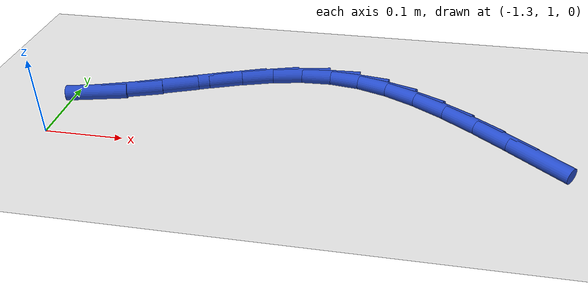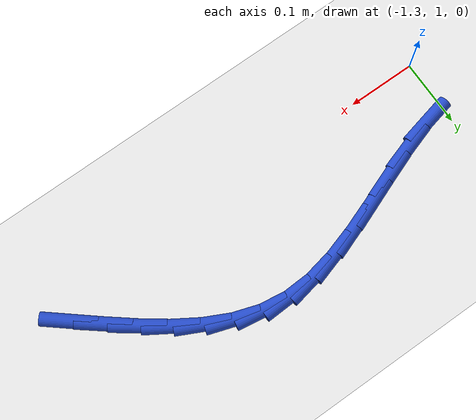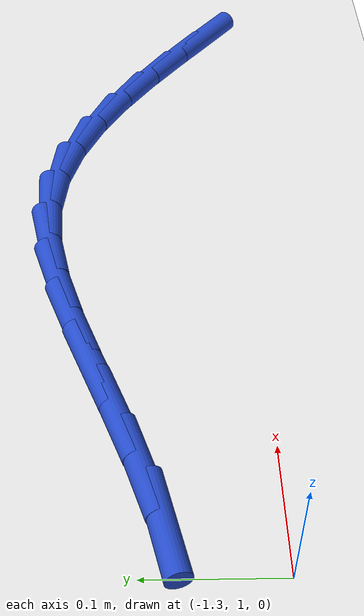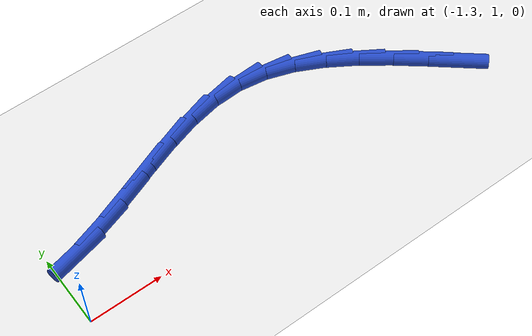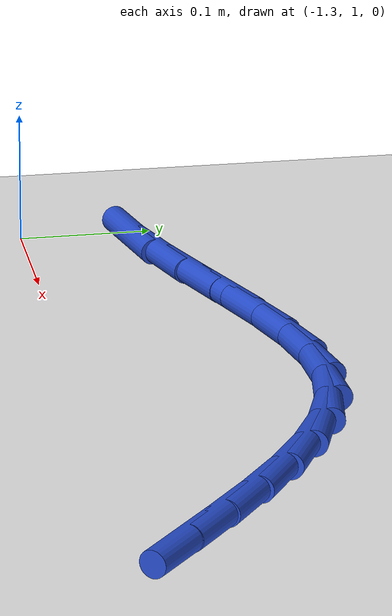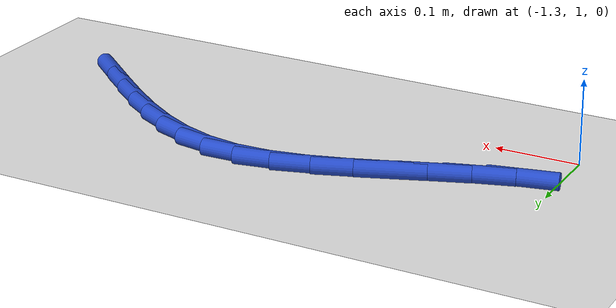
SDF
<sdf version="1.6">
 <world name="default">
  <model name="ground_plane">
   <static>1</static>
   <link name="link">
    <collision name="collision">
     <geometry><plane><normal>0 0 1</normal><size>100 100</size></plane></geometry>
     <surface><friction><ode><mu>100</mu><mu2>50</mu2></ode></friction></surface>
    </collision>
    <visual name="visual">
     <cast_shadows>0</cast_shadows>
     <geometry><plane><normal>0 0 1</normal><size>100 100</size></plane></geometry>
     <material>
      <script><uri>file://media/materials/scripts/gazebo.material</uri><name>Gazebo/WhiteGlow</name></script>
     </material>
    </visual>
   </link>
  </model>
  <model name="line">
   <link name="link_30">
    <pose>-0.7027785990284473 1.0256104682048464 0.01 0 1.57 -0.6939698003422797</pose>
    <collision name="collision">
     <geometry><cylinder><radius>0.01</radius><length>0.08</length></cylinder></geometry>
    </collision>
    <visual name="visual">
     <material>
      <script><name>Gazebo/Blue</name><uri>file://media/materials/scripts/gazebo.material</uri></script>
     </material>
     <geometry><cylinder><radius>0.01</radius><length>0.08</length></cylinder></geometry>
    </visual>
   </link>
   <link name="link_31">
    <pose>-0.7388161312463483 1.0555948491765144 0.01 0 1.57 -0.6758063038308365</pose>
    <collision name="collision">
     <geometry><cylinder><radius>0.01</radius><length>0.08</length></cylinder></geometry>
    </collision>
    <visual name="visual">
     <material>
      <script><name>Gazebo/Blue</name><uri>file://media/materials/scripts/gazebo.material</uri></script>
     </material>
     <geometry><cylinder><radius>0.01</radius><length>0.08</length></cylinder></geometry>
    </visual>
   </link>
   <link name="link_32">
    <pose>-0.774709296839052 1.0843721474580104 0.01 0 1.57 -0.6331072297800732</pose>
    <collision name="collision">
     <geometry><cylinder><radius>0.01</radius><length>0.08</length></cylinder></geometry>
    </collision>
    <visual name="visual">
     <material>
      <script><name>Gazebo/Blue</name><uri>file://media/materials/scripts/gazebo.material</uri></script>
     </material>
     <geometry><cylinder><radius>0.01</radius><length>0.08</length></cylinder></geometry>
    </visual>
   </link>
   <link name="link_33">
    <pose>-0.8107472060918199 1.1108198144269077 0.01 0 1.57 -0.5625453900071486</pose>
    <collision name="collision">
     <geometry><cylinder><radius>0.01</radius><length>0.08</length></cylinder></geometry>
    </collision>
    <visual name="visual">
     <material>
      <script><name>Gazebo/Blue</name><uri>file://media/materials/scripts/gazebo.material</uri></script>
     </material>
     <geometry><cylinder><radius>0.01</radius><length>0.08</length></cylinder></geometry>
    </visual>
   </link>
   <link name="link_34">
    <pose>-0.8472189692899144 1.1338153014607824 0.01 0 1.57 -0.45984189885413</pose>
    <collision name="collision">
     <geometry><cylinder><radius>0.01</radius><length>0.08</length></cylinder></geometry>
    </collision>
    <visual name="visual">
     <material>
      <script><name>Gazebo/Blue</name><uri>file://media/materials/scripts/gazebo.material</uri></script>
     </material>
     <geometry><cylinder><radius>0.01</radius><length>0.08</length></cylinder></geometry>
    </visual>
   </link>
   <link name="link_35">
    <pose>-0.884413696718597 1.1522360599372066 0.01 0 1.57 -0.3214650436060106</pose>
    <collision name="collision">
     <geometry><cylinder><radius>0.01</radius><length>0.08</length></cylinder></geometry>
    </collision>
    <visual name="visual">
     <material>
      <script><name>Gazebo/Blue</name><uri>file://media/materials/scripts/gazebo.material</uri></script>
     </material>
     <geometry><cylinder><radius>0.01</radius><length>0.08</length></cylinder></geometry>
    </visual>
   </link>
   <link name="link_36">
    <pose>-0.9226204986631302 1.1649595412337561 0.01 0 1.57 -0.14833187525414215</pose>
    <collision name="collision">
     <geometry><cylinder><radius>0.01</radius><length>0.08</length></cylinder></geometry>
    </collision>
    <visual name="visual">
     <material>
      <script><name>Gazebo/Blue</name><uri>file://media/materials/scripts/gazebo.material</uri></script>
     </material>
     <geometry><cylinder><radius>0.01</radius><length>0.08</length></cylinder></geometry>
    </visual>
   </link>
   <link name="link_37">
    <pose>-0.9621284854087759 1.1708631967280052 0.01 0 1.57 0.042862806113985</pose>
    <collision name="collision">
     <geometry><cylinder><radius>0.01</radius><length>0.08</length></cylinder></geometry>
    </collision>
    <visual name="visual">
     <material>
      <script><name>Gazebo/Blue</name><uri>file://media/materials/scripts/gazebo.material</uri></script>
     </material>
     <geometry><cylinder><radius>0.01</radius><length>0.08</length></cylinder></geometry>
    </visual>
   </link>
   <link name="link_38">
    <pose>-1.003168622253646 1.169103023225407 0.01 0 1.57 0.19530432509419043</pose>
    <collision name="collision">
     <geometry><cylinder><radius>0.01</radius><length>0.08</length></cylinder></geometry>
    </collision>
    <visual name="visual">
     <material>
      <script><name>Gazebo/Blue</name><uri>file://media/materials/scripts/gazebo.material</uri></script>
     </material>
     <geometry><cylinder><radius>0.01</radius><length>0.08</length></cylinder></geometry>
    </visual>
   </link>
   <link name="link_39">
    <pose>-1.0455798597353239 1.1607129768286568 0.01 0 1.57 0.29508999515194</pose>
    <collision name="collision">
     <geometry><cylinder><radius>0.01</radius><length>0.08</length></cylinder></geometry>
    </collision>
    <visual name="visual">
     <material>
      <script><name>Gazebo/Blue</name><uri>file://media/materials/scripts/gazebo.material</uri></script>
     </material>
     <geometry><cylinder><radius>0.01</radius><length>0.08</length></cylinder></geometry>
    </visual>
   </link>
   <link name="link_40">
    <pose>-1.0890391896587786 1.1475028821492694 0.01 0 1.57 0.3517859616980934</pose>
    <collision name="collision">
     <geometry><cylinder><radius>0.01</radius><length>0.08</length></cylinder></geometry>
    </collision>
    <visual name="visual">
     <material>
      <script><name>Gazebo/Blue</name><uri>file://media/materials/scripts/gazebo.material</uri></script>
     </material>
     <geometry><cylinder><radius>0.01</radius><length>0.08</length></cylinder></geometry>
    </visual>
   </link>
   <link name="link_41">
    <pose>-1.1332230921506417 1.1312850150102483 0.01 0 1.57 0.37234718192794997</pose>
    <collision name="collision">
     <geometry><cylinder><radius>0.01</radius><length>0.08</length></cylinder></geometry>
    </collision>
    <visual name="visual">
     <material>
      <script><name>Gazebo/Blue</name><uri>file://media/materials/scripts/gazebo.material</uri></script>
     </material>
     <geometry><cylinder><radius>0.01</radius><length>0.08</length></cylinder></geometry>
    </visual>
   </link>
   <link name="link_42">
    <pose>-1.1778080473375483 1.1138716512345963 0.01 0 1.57 0.3597155374420773</pose>
    <collision name="collision">
     <geometry><cylinder><radius>0.01</radius><length>0.08</length></cylinder></geometry>
    </collision>
    <visual name="visual">
     <material>
      <script><name>Gazebo/Blue</name><uri>file://media/materials/scripts/gazebo.material</uri></script>
     </material>
     <geometry><cylinder><radius>0.01</radius><length>0.08</length></cylinder></geometry>
    </visual>
   </link>
   <link name="link_43">
    <pose>-1.222470535346131 1.0970750666453168 0.01 0 1.57 0.31284997226879246</pose>
    <collision name="collision">
     <geometry><cylinder><radius>0.01</radius><length>0.08</length></cylinder></geometry>
    </collision>
    <visual name="visual">
     <material>
      <script><name>Gazebo/Blue</name><uri>file://media/materials/scripts/gazebo.material</uri></script>
     </material>
     <geometry><cylinder><radius>0.01</radius><length>0.08</length></cylinder></geometry>
    </visual>
   </link>
   <link name="link_44">
    <pose>-1.2668870363030231 1.0827075370654127 0.01 0 1.57 0.22696474305754447</pose>
    <collision name="collision">
     <geometry><cylinder><radius>0.01</radius><length>0.08</length></cylinder></geometry>
    </collision>
    <visual name="visual">
     <material>
      <script><name>Gazebo/Blue</name><uri>file://media/materials/scripts/gazebo.material</uri></script>
     </material>
     <geometry><cylinder><radius>0.01</radius><length>0.08</length></cylinder></geometry>
    </visual>
   </link>
  </model>
 </world>
</sdf>
